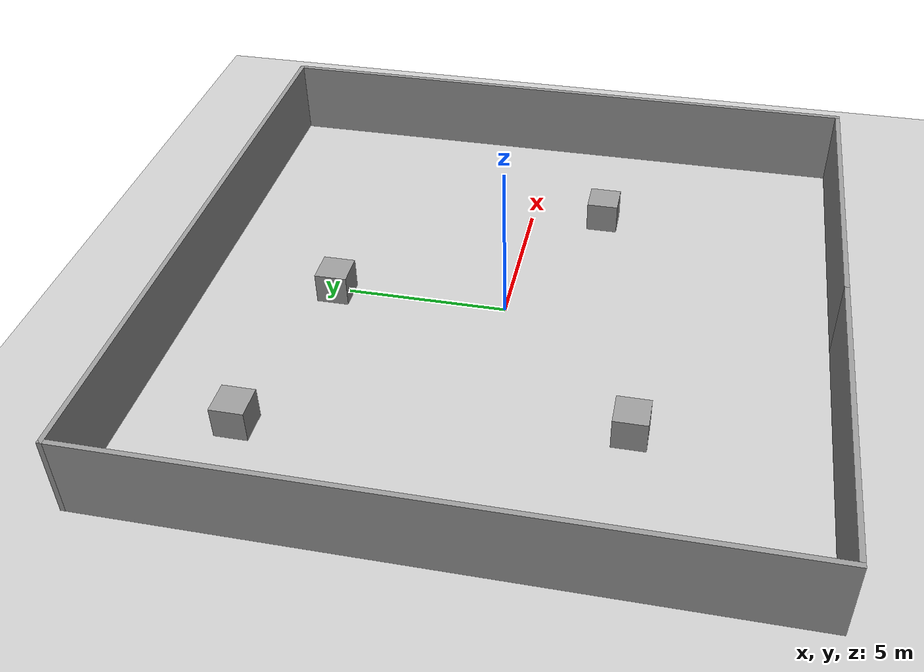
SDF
<sdf version="1.7">
 <world name="default">
  <light name="sun" type="directional">
   <pose>0 0 10 0 -0 0</pose>
   <diffuse>0.8 0.8 0.8 1</diffuse>
   <specular>0.2 0.2 0.2 1</specular>
   <attenuation>
    <range>1000</range>
    <constant>0.9</constant>
    <linear>0.01</linear>
    <quadratic>0.001</quadratic>
   </attenuation>
   <direction>-0.5 0.1 -0.9</direction>
   <spot><inner_angle>0</inner_angle><outer_angle>0</outer_angle><falloff>0</falloff></spot>
  </light>
  <model name="ground_plane">
   <static>1</static>
   <link name="link">
    <collision name="collision">
     <geometry><plane><normal>0 0 1</normal><size>100 100</size></plane></geometry>
     <surface>
      <contact><collide_bitmask>65535</collide_bitmask></contact>
      <friction><ode><mu>100</mu><mu2>50</mu2></ode></friction>
     </surface>
    </collision>
    <visual name="visual">
     <cast_shadows>0</cast_shadows>
     <geometry><plane><normal>0 0 1</normal><size>100 100</size></plane></geometry>
     <material>
      <script><uri>file://media/materials/scripts/gazebo.material</uri><name>Gazebo/Grey</name></script>
     </material>
    </visual>
   </link>
  </model>
  <gravity>0 0 -9.8</gravity>
  <magnetic_field>6e-06 2.3e-05 -4.2e-05</magnetic_field>
  <atmosphere type="adiabatic"/>
  <physics type="ode">
   <max_step_size>0.001</max_step_size>
   <real_time_factor>1</real_time_factor>
   <real_time_update_rate>1000</real_time_update_rate>
  </physics>
  <scene><ambient>0.4 0.4 0.4 1</ambient><background>0.7 0.7 0.7 1</background><shadows>1</shadows></scene>
  <spherical_coordinates>
   <surface_model>EARTH_WGS84</surface_model>
   <latitude_deg>0</latitude_deg>
   <longitude_deg>0</longitude_deg>
   <elevation>0</elevation>
   <heading_deg>0</heading_deg>
  </spherical_coordinates>
  <model name="model_1">
   <pose>-0.209362 -0.191177 0 0 -0 0</pose>
   <link name="Wall_15">
    <collision name="Wall_15_Collision">
     <geometry><box><size>9.75 0.15 2.5</size></box></geometry>
     <pose>0 0 1.25 0 -0 0</pose>
    </collision>
    <visual name="Wall_15_Visual">
     <pose>0 0 1.25 0 -0 0</pose>
     <geometry><box><size>9.75 0.15 2.5</size></box></geometry>
     <material>
      <script><uri>file://media/materials/scripts/gazebo.material</uri><name>Gazebo/Grey</name></script>
      <ambient>1 1 1 1</ambient>
     </material>
     <meta><layer>0</layer></meta>
    </visual>
    <pose>5 -9.8 0 0 -0 0</pose>
   </link>
   <link name="Wall_16">
    <collision name="Wall_16_Collision">
     <geometry><box><size>19.75 0.15 2.5</size></box></geometry>
     <pose>0 0 1.25 0 -0 0</pose>
    </collision>
    <visual name="Wall_16_Visual">
     <pose>0 0 1.25 0 -0 0</pose>
     <geometry><box><size>19.75 0.15 2.5</size></box></geometry>
     <material>
      <script><uri>file://media/materials/scripts/gazebo.material</uri><name>Gazebo/Grey</name></script>
      <ambient>1 1 1 1</ambient>
     </material>
     <meta><layer>0</layer></meta>
    </visual>
    <pose>9.8 -0 0 0 -0 1.5708</pose>
   </link>
   <link name="Wall_17">
    <collision name="Wall_17_Collision">
     <geometry><box><size>19.75 0.15 2.5</size></box></geometry>
     <pose>0 0 1.25 0 -0 0</pose>
    </collision>
    <visual name="Wall_17_Visual">
     <pose>0 0 1.25 0 -0 0</pose>
     <geometry><box><size>19.75 0.15 2.5</size></box></geometry>
     <material>
      <script><uri>file://media/materials/scripts/gazebo.material</uri><name>Gazebo/Grey</name></script>
      <ambient>1 1 1 1</ambient>
     </material>
     <meta><layer>0</layer></meta>
    </visual>
    <pose>0 9.8 0 0 -0 3.14159</pose>
   </link>
   <link name="Wall_18">
    <collision name="Wall_18_Collision">
     <geometry><box><size>19.75 0.15 2.5</size></box></geometry>
     <pose>0 0 1.25 0 -0 0</pose>
    </collision>
    <visual name="Wall_18_Visual">
     <pose>0 0 1.25 0 -0 0</pose>
     <geometry><box><size>19.75 0.15 2.5</size></box></geometry>
     <material>
      <script><uri>file://media/materials/scripts/gazebo.material</uri><name>Gazebo/Grey</name></script>
      <ambient>1 1 1 1</ambient>
     </material>
     <meta><layer>0</layer></meta>
    </visual>
    <pose>-9.8 -0 0 0 -0 -1.5708</pose>
   </link>
   <link name="Wall_19">
    <collision name="Wall_19_Collision">
     <geometry><box><size>10 0.15 2.5</size></box></geometry>
     <pose>0 0 1.25 0 -0 0</pose>
    </collision>
    <visual name="Wall_19_Visual">
     <pose>0 0 1.25 0 -0 0</pose>
     <geometry><box><size>10 0.15 2.5</size></box></geometry>
     <material>
      <script><uri>file://media/materials/scripts/gazebo.material</uri><name>Gazebo/Grey</name></script>
      <ambient>1 1 1 1</ambient>
     </material>
     <meta><layer>0</layer></meta>
    </visual>
    <pose>-4.875 -9.8 0 0 -0 0</pose>
   </link>
   <static>1</static>
  </model>
  <model name="unit_box">
   <pose>5.26675 -2.41338 0.5 0 -0 0</pose>
   <link name="link">
    <inertial>
     <mass>1</mass>
     <inertia>
      <ixx>0.166667</ixx>
      <ixy>0</ixy>
      <ixz>0</ixz>
      <iyy>0.166667</iyy>
      <iyz>0</iyz>
      <izz>0.166667</izz>
     </inertia>
    </inertial>
    <collision name="collision"><geometry><box><size>1 1 1</size></box></geometry></collision>
    <visual name="visual">
     <geometry><box><size>1 1 1</size></box></geometry>
     <material>
      <script><name>Gazebo/Grey</name><uri>file://media/materials/scripts/gazebo.material</uri></script>
     </material>
    </visual>
   </link>
  </model>
  <model name="unit_box_0">
   <pose>-4.68815 -4.44755 0.5 0 -0 0</pose>
   <link name="link">
    <inertial>
     <mass>1</mass>
     <inertia>
      <ixx>0.166667</ixx>
      <ixy>0</ixy>
      <ixz>0</ixz>
      <iyy>0.166667</iyy>
      <iyz>0</iyz>
      <izz>0.166667</izz>
     </inertia>
    </inertial>
    <collision name="collision"><geometry><box><size>1 1 1</size></box></geometry></collision>
    <visual name="visual">
     <geometry><box><size>1 1 1</size></box></geometry>
     <material>
      <script><name>Gazebo/Grey</name><uri>file://media/materials/scripts/gazebo.material</uri></script>
     </material>
    </visual>
   </link>
  </model>
  <model name="unit_box_1">
   <pose>-0.18115 5.37385 0.5 0 -0 0</pose>
   <link name="link">
    <inertial>
     <mass>1</mass>
     <inertia>
      <ixx>0.166667</ixx>
      <ixy>0</ixy>
      <ixz>0</ixz>
      <iyy>0.166667</iyy>
      <iyz>0</iyz>
      <izz>0.166667</izz>
     </inertia>
    </inertial>
    <collision name="collision"><geometry><box><size>1 1 1</size></box></geometry></collision>
    <visual name="visual">
     <geometry><box><size>1 1 1</size></box></geometry>
     <material>
      <script><name>Gazebo/Grey</name><uri>file://media/materials/scripts/gazebo.material</uri></script>
     </material>
    </visual>
   </link>
  </model>
  <model name="unit_box_2">
   <pose>-6.33904 6.33232 0.5 0 -0 0</pose>
   <link name="link">
    <inertial>
     <mass>1</mass>
     <inertia>
      <ixx>0.166667</ixx>
      <ixy>0</ixy>
      <ixz>0</ixz>
      <iyy>0.166667</iyy>
      <iyz>0</iyz>
      <izz>0.166667</izz>
     </inertia>
    </inertial>
    <collision name="collision"><geometry><box><size>1 1 1</size></box></geometry></collision>
    <visual name="visual">
     <geometry><box><size>1 1 1</size></box></geometry>
     <material>
      <script><name>Gazebo/Grey</name><uri>file://media/materials/scripts/gazebo.material</uri></script>
     </material>
    </visual>
   </link>
  </model>
  <plugin name="ActorPosesPlugin" filename="libActorPosesPlugin.so"/>
 </world>
</sdf>
